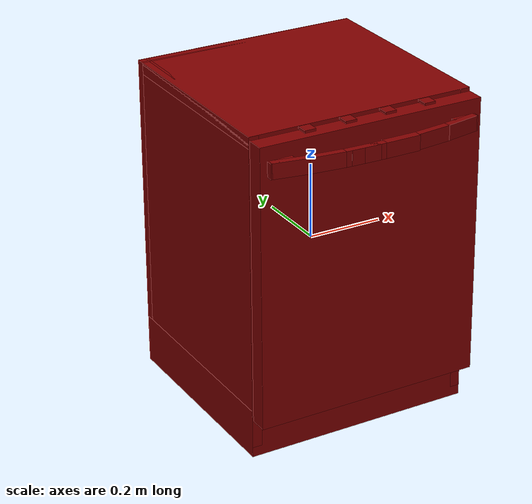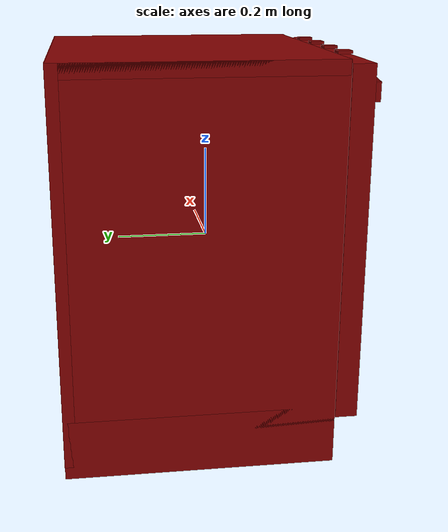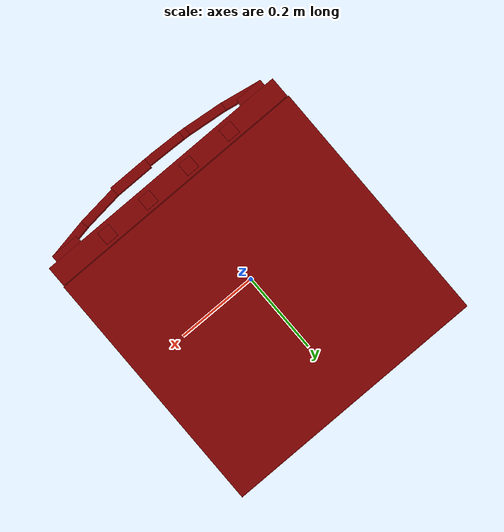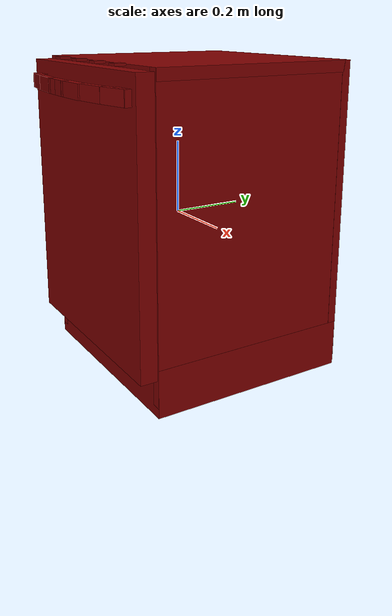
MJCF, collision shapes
<mujoco model="model">
  <compiler angle="radian"/>
  <asset>
    <mesh file="visuals/Body001.obj" name="Body001_vis"/>
    <mesh file="visuals/Button001.obj" name="Button001_vis"/>
    <mesh file="visuals/Button002.obj" name="Button002_vis"/>
    <mesh file="visuals/Button003.obj" name="Button003_vis"/>
    <mesh file="visuals/Button004.obj" name="Button004_vis"/>
    <mesh file="visuals/Container001.obj" name="Container001_vis"/>
    <mesh file="visuals/Container002.obj" name="Container002_vis"/>
    <mesh file="visuals/Door001.obj" name="Door001_vis"/>
    <mesh file="visuals/Handle001.obj" name="Handle001_vis"/>
    <texture file="visuals/T_BC001.png" name="Body001_material" type="2d"/>
    <material name="Body001_material" rgba="1 1 1 1.0" texture="Body001_material" shininess="0.5" specular="4"/>
    <texture file="visuals/T_BC001.png" name="Container001_material" type="2d"/>
    <material name="Container001_material" rgba="1 1 1 1.0" texture="Container001_material" shininess="0.5" specular="8"/>
    <texture file="visuals/T_BC001.png" name="Container002_material" type="2d"/>
    <material name="Container002_material" rgba="1 1 1 1.0" texture="Container002_material" shininess="0.5" specular="8"/>
    <texture file="visuals/T_BC001.png" name="Door001_material" type="2d"/>
    <material name="Door001_material" rgba="1 1 1 1.0" texture="Door001_material" shininess="0.5" specular="4"/>
    <texture file="visuals/T_BC001.png" name="Button001_material" type="2d"/>
    <material name="Button001_material" rgba="1 1 1 1.0" texture="Button001_material" shininess="0.5" specular="0.3103448502657381"/>
    <texture file="visuals/T_BC001.png" name="Button002_material" type="2d"/>
    <material name="Button002_material" rgba="1 1 1 1.0" texture="Button002_material" shininess="0.5" specular="0.3103448502657381"/>
    <texture file="visuals/T_BC001.png" name="Button003_material" type="2d"/>
    <material name="Button003_material" rgba="1 1 1 1.0" texture="Button003_material" shininess="0.5" specular="0.3103448502657381"/>
    <texture file="visuals/T_BC001.png" name="Button004_material" type="2d"/>
    <material name="Button004_material" rgba="1 1 1 1.0" texture="Button004_material" shininess="0.5" specular="0.3103448502657381"/>
    <texture file="visuals/T_BC001.png" name="Handle001_material" type="2d"/>
    <material name="Handle001_material" rgba="1 1 1 1.0" texture="Handle001_material" shininess="0.5" specular="0.3103448502657381"/>
  </asset>
  <default>
    <default class="visual">
      <geom conaffinity="0" contype="0" group="1" type="mesh"/>
    </default>
    <default class="collision">
      <geom group="0" rgba="0.5 0 0 0.5"/>
    </default>
    <default class="spawn">
      <geom group="0" rgba="1 1 1 0.5" contype="0" conaffinity="0"/>
      <site group="0" rgba="1 1 1 0.5"/>
    </default>
    <default class="region">
      <geom group="1" conaffinity="0" contype="0" rgba="0 1 0 0"/>
    </default>
  </default>
  <worldbody>
    <body>
      <body name="object">
        <geom mesh="Body001_vis" type="mesh" solimp="0.998 0.998 0.001" solref="0.001 1" density="100" friction="0.95 0.3 0.1" class="visual" material="Body001_material"/>
        <geom class="collision" type="box" pos="-0.292940 0.048369 0.011758" size="0.013108369894325733 0.28617629408836365 0.41520828008651733" quat="1.0 0.0 0.0 0.0"/>
        <geom class="collision" type="box" pos="-0.000000 0.322158 0.011758" size="0.3060484230518341 0.012388086877763271 0.41520828008651733" quat="1.0 0.0 0.0 0.0"/>
        <geom class="collision" type="box" pos="0.292583 0.048369 0.011758" size="0.013108369894325733 0.28617629408836365 0.41520828008651733" quat="1.0 0.0 0.0 0.0"/>
        <geom class="collision" type="box" pos="-0.000000 0.048062 0.411774" size="0.3060484230518341 0.2847980260848999 0.015192526392638683" quat="1.0 0.0 0.0 0.0"/>
        <geom class="collision" type="box" pos="-0.000000 0.048062 -0.365191" size="0.3060484230518341 0.2858274281024933 0.06511843949556351" quat="1.0 0.0 0.0 0.0"/>
        <geom class="collision" type="box" pos="-0.266407 0.028172 0.064072" size="0.013690252788364887 0.24464596807956696 0.003919371869415045" quat="1.0 0.0 0.0 0.0"/>
        <geom class="collision" type="box" pos="-0.266407 0.028172 -0.187143" size="0.013690252788364887 0.24464596807956696 0.0050508081912994385" quat="1.0 0.0 0.0 0.0"/>
        <geom class="collision" type="box" pos="0.269024 0.028172 -0.187143" size="0.013690252788364887 0.24464596807956696 0.0050508081912994385" quat="1.0 0.0 0.0 0.0"/>
        <geom class="collision" type="box" pos="0.269024 0.028172 0.064072" size="0.013690252788364887 0.24464596807956696 0.003919371869415045" quat="1.0 0.0 0.0 0.0"/>
        <body name="Container001">
          <joint axis="0.0 -1.0 0.0" pos="0.000172 0.024957 0.125462" limited="true" name="Container001_joint" range="0.0 0.15" type="slide" damping="1" frictionloss="1" armature=".01" stiffness="0.05"/>
          <geom mesh="Container001_vis" type="mesh" solimp="0.998 0.998 0.001" solref="0.001 1" density="100" friction="0.95 0.3 0.1" class="visual" material="Container001_material"/>
          <geom class="collision" type="box" pos="0.000730 0.250593 0.123086" size="0.2716882824897766 0.009994161315262318 0.051924850791692734" quat="1.0 0.0 0.0 0.0"/>
          <geom class="collision" type="box" pos="0.000730 0.024027 0.078994" size="0.2716883420944214 0.2365603893995285 0.007833192124962807" quat="1.0 0.0 0.0 0.0"/>
          <geom class="collision" type="box" pos="-0.269797 0.024361 0.123086" size="0.008622564375400543 0.23622627556324005 0.05192486569285393" quat="1.0 0.0 0.0 0.0"/>
          <geom class="collision" type="box" pos="0.269984 0.024361 0.123086" size="0.008622566238045692 0.23622630536556244 0.051924873143434525" quat="1.0 0.0 0.0 0.0"/>
          <geom class="collision" type="box" pos="0.000730 -0.214594 0.123086" size="0.2716885209083557 0.009994168765842915 0.05192488059401512" quat="1.0 0.0 0.0 0.0"/>
        </body>
        <body name="Container002">
          <joint axis="0.0 -1.0 0.0" pos="0.001224 0.024957 -0.125949" limited="true" name="Container002_joint" range="0.0 0.15" type="slide" damping="1" frictionloss="1" armature=".01" stiffness="0.05"/>
          <geom mesh="Container002_vis" type="mesh" solimp="0.998 0.998 0.001" solref="0.001 1" density="100" friction="0.95 0.3 0.1" class="visual" material="Container002_material"/>
          <geom class="collision" type="box" pos="0.000730 -0.214594 -0.125537" size="0.2716885805130005 0.009994170628488064 0.05192488804459572" quat="1.0 0.0 0.0 0.0"/>
          <geom class="collision" type="box" pos="0.269984 0.024361 -0.125537" size="0.00862257182598114 0.2362263947725296 0.051924895495176315" quat="1.0 0.0 0.0 0.0"/>
          <geom class="collision" type="box" pos="-0.269797 0.024361 -0.125537" size="0.00862257368862629 0.236226424574852 0.05192490294575691" quat="1.0 0.0 0.0 0.0"/>
          <geom class="collision" type="box" pos="0.000730 0.024027 -0.169628" size="0.2716887593269348 0.23656059801578522 0.007833198644220829" quat="1.0 0.0 0.0 0.0"/>
          <geom class="collision" type="box" pos="0.000730 0.250593 -0.125537" size="0.2716888189315796 0.00999417807906866 0.051924917846918106" quat="1.0 0.0 0.0 0.0"/>
        </body>
        <body name="Door001">
          <joint axis="1.0 0.0 0.0" pos="0.000619 -0.240083 -0.327146" limited="true" name="Door001_joint" range="0.0 0.5235987755982988" type="hinge" damping="1" frictionloss="1" armature=".01" stiffness="3" springref="-2"/>
          <geom mesh="Door001_vis" type="mesh" solimp="0.998 0.998 0.001" solref="0.001 1" density="100" friction="0.95 0.3 0.1" class="visual" material="Door001_material"/>
          <geom class="collision" type="box" pos="0.000239 -0.263304 0.045771" size="0.3045286536216736 0.023595796898007393 0.3724910616874695" quat="1.0 0.0 0.0 0.0"/>
          <body name="Button001">
            <joint axis="0.0 0.0 -1.0" pos="-0.164423 -0.260929 0.424128" limited="true" name="Button001_joint" range="0.0 0.001" type="slide" damping="1" frictionloss="1" armature=".01" stiffness="1" springref="-0.4"/>
            <geom mesh="Button001_vis" type="mesh" solimp="0.998 0.998 0.001" solref="0.001 1" density="100" friction="0.95 0.3 0.1" class="visual" material="Button001_material"/>
            <geom class="collision" type="box" pos="-0.164404 -0.261120 0.426992" size="0.015258826315402985 0.015258826315402985 0.003318455535918474" quat="1.0 0.0 0.0 0.0"/>
          </body>
          <body name="Button002">
            <joint axis="0.0 0.0 -1.0" pos="-0.054395 -0.260929 0.424128" limited="true" name="Button002_joint" range="0.0 0.001" type="slide" damping="1" frictionloss="1" armature=".01" stiffness="1" springref="-0.4"/>
            <geom mesh="Button002_vis" type="mesh" solimp="0.998 0.998 0.001" solref="0.001 1" density="100" friction="0.95 0.3 0.1" class="visual" material="Button002_material"/>
            <geom class="collision" type="box" pos="-0.054110 -0.261120 0.426992" size="0.014972299337387085 0.014972299337387085 0.0032111881300807" quat="1.0 0.0 0.0 0.0"/>
          </body>
          <body name="Button003">
            <joint axis="0.0 0.0 -1.0" pos="0.055634 -0.260929 0.424128" limited="true" name="Button003_joint" range="0.0 0.001" type="slide" damping="1" frictionloss="1" armature=".01" stiffness="1" springref="-0.4"/>
            <geom mesh="Button003_vis" type="mesh" solimp="0.998 0.998 0.001" solref="0.001 1" density="100" friction="0.95 0.3 0.1" class="visual" material="Button003_material"/>
            <geom class="collision" type="box" pos="0.055665 -0.260855 0.426992" size="0.014971550554037094 0.014971550554037094 0.003210915718227625" quat="1.0 0.0 0.0 0.0"/>
          </body>
          <body name="Button004">
            <joint axis="0.0 0.0 -1.0" pos="0.165662 -0.260929 0.424128" limited="true" name="Button004_joint" range="0.0 0.001" type="slide" damping="1" frictionloss="1" armature=".01" stiffness="1" springref="-0.4"/>
            <geom mesh="Button004_vis" type="mesh" solimp="0.998 0.998 0.001" solref="0.001 1" density="100" friction="0.95 0.3 0.1" class="visual" material="Button004_material"/>
            <geom class="collision" type="box" pos="0.165609 -0.261062 0.426992" size="0.014968202449381351 0.014968202449381351 0.003209665883332491" quat="1.0 0.0 0.0 0.0"/>
          </body>
          <body name="Handle001">
            <geom mesh="Handle001_vis" type="mesh" solimp="0.998 0.998 0.001" solref="0.001 1" density="100" friction="0.95 0.3 0.1" class="visual" material="Handle001_material"/>
            <geom class="collision" type="box" pos="0.253222 -0.288987 0.361301" size="0.03264765068888664 0.015286942012608051 0.019917838275432587" quat="1.0 0.0 0.0 0.0"/>
            <geom class="collision" type="box" pos="0.237021 -0.303337 0.361301" size="0.04660938307642937 0.008954321034252644 0.019917838275432587" quat="0.9960660338401794 0.0 0.0 0.08861380070447922"/>
            <geom class="collision" type="box" pos="0.145229 -0.316743 0.361301" size="0.04660938307642937 0.008954321034252644 0.019917838275432587" quat="0.9985488653182983 0.0 0.0 0.05385306850075722"/>
            <geom class="collision" type="box" pos="0.053694 -0.323731 0.361301" size="0.04693078622221947 0.010815020650625229 0.019917838275432587" quat="1.0 0.0 0.0 0.0"/>
            <geom class="collision" type="box" pos="-0.038203 -0.324191 0.361301" size="0.04660938307642937 0.008954321034252644 0.019917838275432587" quat="0.9998915195465088 0.0 -0.0 -0.014729319140315056"/>
            <geom class="collision" type="box" pos="-0.252431 -0.288987 0.361301" size="0.03264765068888664 0.015286942012608051 0.019917838275432587" quat="1.0 0.0 0.0 0.0"/>
            <geom class="collision" type="box" pos="-0.052903 -0.323731 0.361301" size="0.04660938307642937 0.008954321034252644 0.019917838275432587" quat="0.9997991323471069 0.0 -0.0 -0.020041782408952713"/>
            <geom class="collision" type="box" pos="-0.144438 -0.316743 0.361301" size="0.04660938307642937 0.008954321034252644 0.019917838275432587" quat="0.9985488653182983 0.0 -0.0 -0.053853075951337814"/>
            <geom class="collision" type="box" pos="-0.236230 -0.303337 0.361301" size="0.04660938307642937 0.008954321034252644 0.019917838275432587" quat="0.9960660338401794 0.0 -0.0 -0.08861380070447922"/>
          </body>
        </body>
        <geom class="region" name="reg_main" type="box" pos="0.0005365000000000231 0.023495500000000002 -0.0007179999999999964" size="0.3048835 0.3105635 0.42922"/>
        <geom class="region" name="reg_int" type="box" pos="0.00026550000000000185 0.036930500000000005 0.0496105" size="0.27703849999999997 0.2705425 0.3434005"/>
      </body>
    </body>
  </worldbody>
  <actuator>
    <motor name="Container001_joint_actuator" joint="Container001_joint" gear="10"/>
    <motor name="Container002_joint_actuator" joint="Container002_joint" gear="10"/>
    <motor name="Door001_joint_actuator" joint="Door001_joint" gear="50"/>
    <motor name="Button001_joint_actuator" joint="Button001_joint" gear="0.5"/>
    <motor name="Button002_joint_actuator" joint="Button002_joint" gear="0.5"/>
    <motor name="Button003_joint_actuator" joint="Button003_joint" gear="0.5"/>
    <motor name="Button004_joint_actuator" joint="Button004_joint" gear="0.5"/>
  </actuator>
</mujoco>
